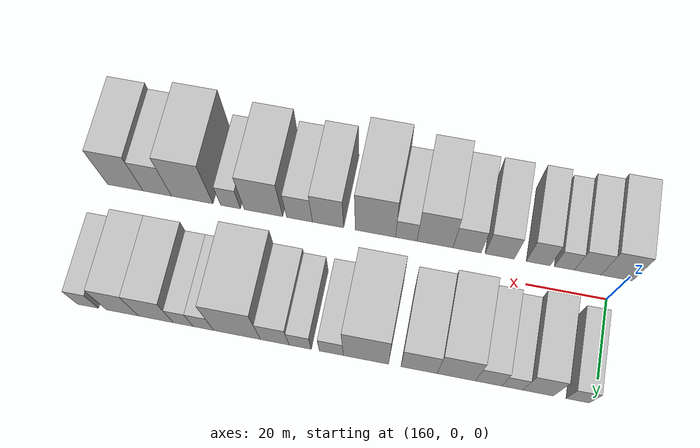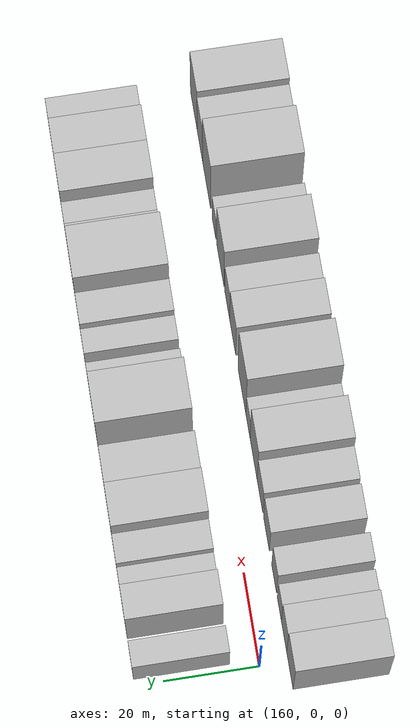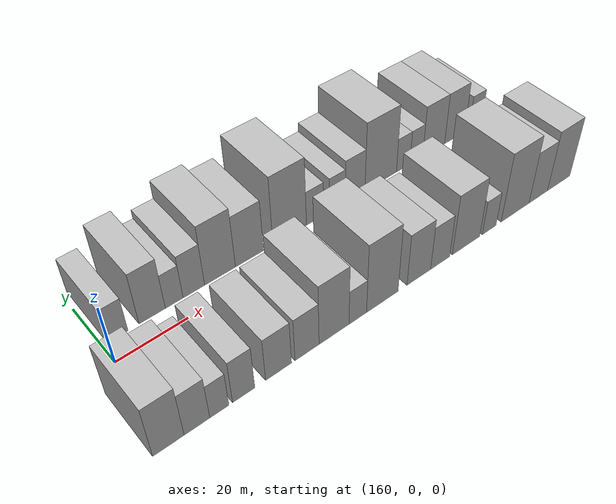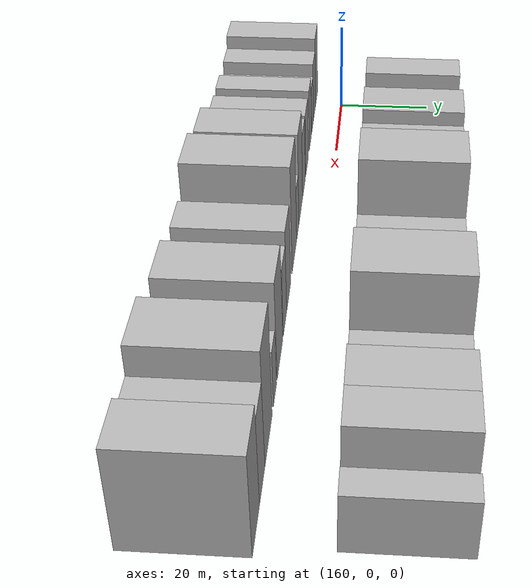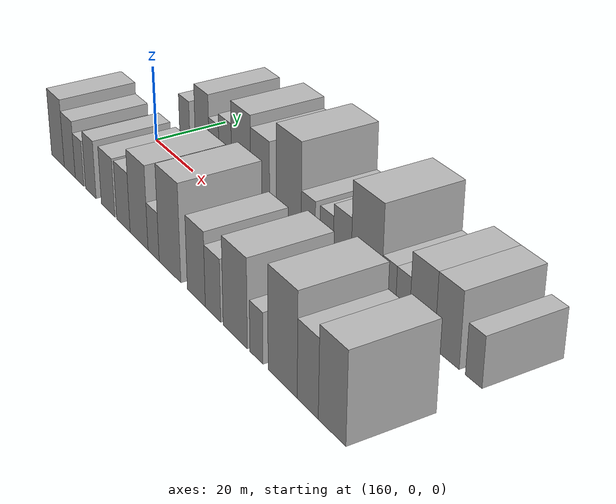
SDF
<sdf version="1.6">
 <world name="default">
  <model name="building_16">
   <static>1</static>
   <pose>164.2085 16.0000 0 0.000000 0.000000 1.570796</pose>
   <link name="link">
    <pose>0 0 6.00 0 0 0</pose>
    <collision name="collision"><geometry><box><size>20.0000 5.5949 12.0000</size></box></geometry></collision>
    <visual name="visual">
     <cast_shadows>0</cast_shadows>
     <geometry><box><size>20.0000 5.5949 12.0000</size></box></geometry>
     <material>
      <script>
       <uri>model://HANNAS_wall/materials/scripts</uri>
       <uri>model://HANNAS_wall/materials/textures</uri>
       <name>vrc/HANNAS_wall</name>
      </script>
     </material>
    </visual>
   </link>
  </model>
  <model name="building_17">
   <static>1</static>
   <pose>173.6710 16.0000 0 0.000000 0.000000 1.570796</pose>
   <link name="link">
    <pose>0 0 9.00 0 0 0</pose>
    <collision name="collision"><geometry><box><size>20.0000 7.3300 18.0000</size></box></geometry></collision>
    <visual name="visual">
     <cast_shadows>0</cast_shadows>
     <geometry><box><size>20.0000 7.3300 18.0000</size></box></geometry>
     <material>
      <script>
       <uri>model://HANNAS_wall/materials/scripts</uri>
       <uri>model://HANNAS_wall/materials/textures</uri>
       <name>vrc/HANNAS_wall</name>
      </script>
     </material>
    </visual>
   </link>
  </model>
  <model name="building_18">
   <static>1</static>
   <pose>179.8715 16.0000 0 0.000000 0.000000 1.570796</pose>
   <link name="link">
    <pose>0 0 6.00 0 0 0</pose>
    <collision name="collision"><geometry><box><size>20.0000 5.0711 12.0000</size></box></geometry></collision>
    <visual name="visual">
     <cast_shadows>0</cast_shadows>
     <geometry><box><size>20.0000 5.0711 12.0000</size></box></geometry>
     <material>
      <script>
       <uri>model://HANNAS_wall/materials/scripts</uri>
       <uri>model://HANNAS_wall/materials/textures</uri>
       <name>vrc/HANNAS_wall</name>
      </script>
     </material>
    </visual>
   </link>
  </model>
  <model name="building_19">
   <static>1</static>
   <pose>185.5619 16.0000 0 0.000000 0.000000 1.570796</pose>
   <link name="link">
    <pose>0 0 7.50 0 0 0</pose>
    <collision name="collision"><geometry><box><size>20.0000 6.3096 15.0000</size></box></geometry></collision>
    <visual name="visual">
     <cast_shadows>0</cast_shadows>
     <geometry><box><size>20.0000 6.3096 15.0000</size></box></geometry>
     <material>
      <script>
       <uri>model://HANNAS_wall/materials/scripts</uri>
       <uri>model://HANNAS_wall/materials/textures</uri>
       <name>vrc/HANNAS_wall</name>
      </script>
     </material>
    </visual>
   </link>
  </model>
  <model name="building_20">
   <static>1</static>
   <pose>193.3620 16.0000 0 0.000000 0.000000 1.570796</pose>
   <link name="link">
    <pose>0 0 10.50 0 0 0</pose>
    <collision name="collision"><geometry><box><size>20.0000 9.2907 21.0000</size></box></geometry></collision>
    <visual name="visual">
     <cast_shadows>0</cast_shadows>
     <geometry><box><size>20.0000 9.2907 21.0000</size></box></geometry>
     <material>
      <script>
       <uri>model://HANNAS_wall/materials/scripts</uri>
       <uri>model://HANNAS_wall/materials/textures</uri>
       <name>vrc/HANNAS_wall</name>
      </script>
     </material>
    </visual>
   </link>
  </model>
  <model name="building_21">
   <static>1</static>
   <pose>202.4040 16.0000 0 0.000000 0.000000 1.570796</pose>
   <link name="link">
    <pose>0 0 9.00 0 0 0</pose>
    <collision name="collision"><geometry><box><size>20.0000 8.7932 18.0000</size></box></geometry></collision>
    <visual name="visual">
     <cast_shadows>0</cast_shadows>
     <geometry><box><size>20.0000 8.7932 18.0000</size></box></geometry>
     <material>
      <script>
       <uri>model://HANNAS_wall/materials/scripts</uri>
       <uri>model://HANNAS_wall/materials/textures</uri>
       <name>vrc/HANNAS_wall</name>
      </script>
     </material>
    </visual>
   </link>
  </model>
  <model name="building_22">
   <static>1</static>
   <pose>215.3297 16.0000 0 0.000000 0.000000 1.570796</pose>
   <link name="link">
    <pose>0 0 12.00 0 0 0</pose>
    <collision name="collision"><geometry><box><size>20.0000 11.0581 24.0000</size></box></geometry></collision>
    <visual name="visual">
     <cast_shadows>0</cast_shadows>
     <geometry><box><size>20.0000 11.0581 24.0000</size></box></geometry>
     <material>
      <script>
       <uri>model://HANNAS_wall/materials/scripts</uri>
       <uri>model://HANNAS_wall/materials/textures</uri>
       <name>vrc/HANNAS_wall</name>
      </script>
     </material>
    </visual>
   </link>
  </model>
  <model name="building_23">
   <static>1</static>
   <pose>223.8093 16.0000 0 0.000000 0.000000 1.570796</pose>
   <link name="link">
    <pose>0 0 6.00 0 0 0</pose>
    <collision name="collision"><geometry><box><size>20.0000 5.9010 12.0000</size></box></geometry></collision>
    <visual name="visual">
     <cast_shadows>0</cast_shadows>
     <geometry><box><size>20.0000 5.9010 12.0000</size></box></geometry>
     <material>
      <script>
       <uri>model://HANNAS_wall/materials/scripts</uri>
       <uri>model://HANNAS_wall/materials/textures</uri>
       <name>vrc/HANNAS_wall</name>
      </script>
     </material>
    </visual>
   </link>
  </model>
  <model name="building_24">
   <static>1</static>
   <pose>231.5035 16.0000 0 0.000000 0.000000 1.570796</pose>
   <link name="link">
    <pose>0 0 6.00 0 0 0</pose>
    <collision name="collision"><geometry><box><size>20.0000 5.4875 12.0000</size></box></geometry></collision>
    <visual name="visual">
     <cast_shadows>0</cast_shadows>
     <geometry><box><size>20.0000 5.4875 12.0000</size></box></geometry>
     <material>
      <script>
       <uri>model://HANNAS_wall/materials/scripts</uri>
       <uri>model://HANNAS_wall/materials/textures</uri>
       <name>vrc/HANNAS_wall</name>
      </script>
     </material>
    </visual>
   </link>
  </model>
  <model name="building_25">
   <static>1</static>
   <pose>237.7894 16.0000 0 0.000000 0.000000 1.570796</pose>
   <link name="link">
    <pose>0 0 7.50 0 0 0</pose>
    <collision name="collision"><geometry><box><size>20.0000 7.0842 15.0000</size></box></geometry></collision>
    <visual name="visual">
     <cast_shadows>0</cast_shadows>
     <geometry><box><size>20.0000 7.0842 15.0000</size></box></geometry>
     <material>
      <script>
       <uri>model://HANNAS_wall/materials/scripts</uri>
       <uri>model://HANNAS_wall/materials/textures</uri>
       <name>vrc/HANNAS_wall</name>
      </script>
     </material>
    </visual>
   </link>
  </model>
  <model name="building_26">
   <static>1</static>
   <pose>247.1757 16.0000 0 0.000000 0.000000 1.570796</pose>
   <link name="link">
    <pose>0 0 12.00 0 0 0</pose>
    <collision name="collision"><geometry><box><size>20.0000 11.6884 24.0000</size></box></geometry></collision>
    <visual name="visual">
     <cast_shadows>0</cast_shadows>
     <geometry><box><size>20.0000 11.6884 24.0000</size></box></geometry>
     <material>
      <script>
       <uri>model://HANNAS_wall/materials/scripts</uri>
       <uri>model://HANNAS_wall/materials/textures</uri>
       <name>vrc/HANNAS_wall</name>
      </script>
     </material>
    </visual>
   </link>
  </model>
  <model name="building_27">
   <static>1</static>
   <pose>255.6017 16.0000 0 0.000000 0.000000 1.570796</pose>
   <link name="link">
    <pose>0 0 6.00 0 0 0</pose>
    <collision name="collision"><geometry><box><size>20.0000 5.1636 12.0000</size></box></geometry></collision>
    <visual name="visual">
     <cast_shadows>0</cast_shadows>
     <geometry><box><size>20.0000 5.1636 12.0000</size></box></geometry>
     <material>
      <script>
       <uri>model://HANNAS_wall/materials/scripts</uri>
       <uri>model://HANNAS_wall/materials/textures</uri>
       <name>vrc/HANNAS_wall</name>
      </script>
     </material>
    </visual>
   </link>
  </model>
  <model name="building_28">
   <static>1</static>
   <pose>260.6690 16.0000 0 0.000000 0.000000 1.570796</pose>
   <link name="link">
    <pose>0 0 6.00 0 0 0</pose>
    <collision name="collision"><geometry><box><size>20.0000 4.9711 12.0000</size></box></geometry></collision>
    <visual name="visual">
     <cast_shadows>0</cast_shadows>
     <geometry><box><size>20.0000 4.9711 12.0000</size></box></geometry>
     <material>
      <script>
       <uri>model://HANNAS_wall/materials/scripts</uri>
       <uri>model://HANNAS_wall/materials/textures</uri>
       <name>vrc/HANNAS_wall</name>
      </script>
     </material>
    </visual>
   </link>
  </model>
  <model name="building_29">
   <static>1</static>
   <pose>267.5593 16.0000 0 0.000000 0.000000 1.570796</pose>
   <link name="link">
    <pose>0 0 9.00 0 0 0</pose>
    <collision name="collision"><geometry><box><size>20.0000 8.8094 18.0000</size></box></geometry></collision>
    <visual name="visual">
     <cast_shadows>0</cast_shadows>
     <geometry><box><size>20.0000 8.8094 18.0000</size></box></geometry>
     <material>
      <script>
       <uri>model://HANNAS_wall/materials/scripts</uri>
       <uri>model://HANNAS_wall/materials/textures</uri>
       <name>vrc/HANNAS_wall</name>
      </script>
     </material>
    </visual>
   </link>
  </model>
  <model name="building_30">
   <static>1</static>
   <pose>276.0621 16.0000 0 0.000000 0.000000 1.570796</pose>
   <link name="link">
    <pose>0 0 9.00 0 0 0</pose>
    <collision name="collision"><geometry><box><size>20.0000 8.1962 18.0000</size></box></geometry></collision>
    <visual name="visual">
     <cast_shadows>0</cast_shadows>
     <geometry><box><size>20.0000 8.1962 18.0000</size></box></geometry>
     <material>
      <script>
       <uri>model://HANNAS_wall/materials/scripts</uri>
       <uri>model://HANNAS_wall/materials/textures</uri>
       <name>vrc/HANNAS_wall</name>
      </script>
     </material>
    </visual>
   </link>
  </model>
  <model name="building_31">
   <static>1</static>
   <pose>284.8099 16.0000 0 0.000000 0.000000 1.570796</pose>
   <link name="link">
    <pose>0 0 6.00 0 0 0</pose>
    <collision name="collision"><geometry><box><size>20.0000 5.2995 12.0000</size></box></geometry></collision>
    <visual name="visual">
     <cast_shadows>0</cast_shadows>
     <geometry><box><size>20.0000 5.2995 12.0000</size></box></geometry>
     <material>
      <script>
       <uri>model://HANNAS_wall/materials/scripts</uri>
       <uri>model://HANNAS_wall/materials/textures</uri>
       <name>vrc/HANNAS_wall</name>
      </script>
     </material>
    </visual>
   </link>
  </model>
  <model name="building_47">
   <static>1</static>
   <pose>158.1193 -16.0000 0 0.000000 0.000000 1.570796</pose>
   <link name="link">
    <pose>0 0 9.00 0 0 0</pose>
    <collision name="collision"><geometry><box><size>20.0000 7.8533 18.0000</size></box></geometry></collision>
    <visual name="visual">
     <cast_shadows>0</cast_shadows>
     <geometry><box><size>20.0000 7.8533 18.0000</size></box></geometry>
     <material>
      <script>
       <uri>model://HANNAS_wall/materials/scripts</uri>
       <uri>model://HANNAS_wall/materials/textures</uri>
       <name>vrc/HANNAS_wall</name>
      </script>
     </material>
    </visual>
   </link>
  </model>
  <model name="building_48">
   <static>1</static>
   <pose>165.3548 -16.0000 0 0.000000 0.000000 1.570796</pose>
   <link name="link">
    <pose>0 0 7.50 0 0 0</pose>
    <collision name="collision"><geometry><box><size>20.0000 6.6178 15.0000</size></box></geometry></collision>
    <visual name="visual">
     <cast_shadows>0</cast_shadows>
     <geometry><box><size>20.0000 6.6178 15.0000</size></box></geometry>
     <material>
      <script>
       <uri>model://HANNAS_wall/materials/scripts</uri>
       <uri>model://HANNAS_wall/materials/textures</uri>
       <name>vrc/HANNAS_wall</name>
      </script>
     </material>
    </visual>
   </link>
  </model>
  <model name="building_49">
   <static>1</static>
   <pose>171.1780 -16.0000 0 0.000000 0.000000 1.570796</pose>
   <link name="link">
    <pose>0 0 6.00 0 0 0</pose>
    <collision name="collision"><geometry><box><size>20.0000 5.0285 12.0000</size></box></geometry></collision>
    <visual name="visual">
     <cast_shadows>0</cast_shadows>
     <geometry><box><size>20.0000 5.0285 12.0000</size></box></geometry>
     <material>
      <script>
       <uri>model://HANNAS_wall/materials/scripts</uri>
       <uri>model://HANNAS_wall/materials/textures</uri>
       <name>vrc/HANNAS_wall</name>
      </script>
     </material>
    </visual>
   </link>
  </model>
  <model name="building_50">
   <static>1</static>
   <pose>177.7196 -16.0000 0 0.000000 0.000000 1.570796</pose>
   <link name="link">
    <pose>0 0 7.50 0 0 0</pose>
    <collision name="collision"><geometry><box><size>20.0000 6.0546 15.0000</size></box></geometry></collision>
    <visual name="visual">
     <cast_shadows>0</cast_shadows>
     <geometry><box><size>20.0000 6.0546 15.0000</size></box></geometry>
     <material>
      <script>
       <uri>model://HANNAS_wall/materials/scripts</uri>
       <uri>model://HANNAS_wall/materials/textures</uri>
       <name>vrc/HANNAS_wall</name>
      </script>
     </material>
    </visual>
   </link>
  </model>
  <model name="building_51">
   <static>1</static>
   <pose>187.4385 -16.0000 0 0.000000 0.000000 1.570796</pose>
   <link name="link">
    <pose>0 0 7.50 0 0 0</pose>
    <collision name="collision"><geometry><box><size>20.0000 7.3833 15.0000</size></box></geometry></collision>
    <visual name="visual">
     <cast_shadows>0</cast_shadows>
     <geometry><box><size>20.0000 7.3833 15.0000</size></box></geometry>
     <material>
      <script>
       <uri>model://HANNAS_wall/materials/scripts</uri>
       <uri>model://HANNAS_wall/materials/textures</uri>
       <name>vrc/HANNAS_wall</name>
      </script>
     </material>
    </visual>
   </link>
  </model>
  <model name="building_52">
   <static>1</static>
   <pose>195.6969 -16.0000 0 0.000000 0.000000 1.570796</pose>
   <link name="link">
    <pose>0 0 7.50 0 0 0</pose>
    <collision name="collision"><geometry><box><size>20.0000 7.1335 15.0000</size></box></geometry></collision>
    <visual name="visual">
     <cast_shadows>0</cast_shadows>
     <geometry><box><size>20.0000 7.1335 15.0000</size></box></geometry>
     <material>
      <script>
       <uri>model://HANNAS_wall/materials/scripts</uri>
       <uri>model://HANNAS_wall/materials/textures</uri>
       <name>vrc/HANNAS_wall</name>
      </script>
     </material>
    </visual>
   </link>
  </model>
  <model name="building_53">
   <static>1</static>
   <pose>203.8456 -16.0000 0 0.000000 0.000000 1.570796</pose>
   <link name="link">
    <pose>0 0 10.50 0 0 0</pose>
    <collision name="collision"><geometry><box><size>20.0000 9.1638 21.0000</size></box></geometry></collision>
    <visual name="visual">
     <cast_shadows>0</cast_shadows>
     <geometry><box><size>20.0000 9.1638 21.0000</size></box></geometry>
     <material>
      <script>
       <uri>model://HANNAS_wall/materials/scripts</uri>
       <uri>model://HANNAS_wall/materials/textures</uri>
       <name>vrc/HANNAS_wall</name>
      </script>
     </material>
    </visual>
   </link>
  </model>
  <model name="building_54">
   <static>1</static>
   <pose>211.1788 -16.0000 0 0.000000 0.000000 1.570796</pose>
   <link name="link">
    <pose>0 0 6.00 0 0 0</pose>
    <collision name="collision"><geometry><box><size>20.0000 5.5026 12.0000</size></box></geometry></collision>
    <visual name="visual">
     <cast_shadows>0</cast_shadows>
     <geometry><box><size>20.0000 5.5026 12.0000</size></box></geometry>
     <material>
      <script>
       <uri>model://HANNAS_wall/materials/scripts</uri>
       <uri>model://HANNAS_wall/materials/textures</uri>
       <name>vrc/HANNAS_wall</name>
      </script>
     </material>
    </visual>
   </link>
  </model>
  <model name="building_55">
   <static>1</static>
   <pose>219.0951 -16.0000 0 0.000000 0.000000 1.570796</pose>
   <link name="link">
    <pose>0 0 12.00 0 0 0</pose>
    <collision name="collision"><geometry><box><size>20.0000 10.3301 24.0000</size></box></geometry></collision>
    <visual name="visual">
     <cast_shadows>0</cast_shadows>
     <geometry><box><size>20.0000 10.3301 24.0000</size></box></geometry>
     <material>
      <script>
       <uri>model://HANNAS_wall/materials/scripts</uri>
       <uri>model://HANNAS_wall/materials/textures</uri>
       <name>vrc/HANNAS_wall</name>
      </script>
     </material>
    </visual>
   </link>
  </model>
  <model name="building_56">
   <static>1</static>
   <pose>231.3069 -16.0000 0 0.000000 0.000000 1.570796</pose>
   <link name="link">
    <pose>0 0 9.00 0 0 0</pose>
    <collision name="collision"><geometry><box><size>20.0000 8.0935 18.0000</size></box></geometry></collision>
    <visual name="visual">
     <cast_shadows>0</cast_shadows>
     <geometry><box><size>20.0000 8.0935 18.0000</size></box></geometry>
     <material>
      <script>
       <uri>model://HANNAS_wall/materials/scripts</uri>
       <uri>model://HANNAS_wall/materials/textures</uri>
       <name>vrc/HANNAS_wall</name>
      </script>
     </material>
    </visual>
   </link>
  </model>
  <model name="building_57">
   <static>1</static>
   <pose>238.7054 -16.0000 0 0.000000 0.000000 1.570796</pose>
   <link name="link">
    <pose>0 0 7.50 0 0 0</pose>
    <collision name="collision"><geometry><box><size>20.0000 6.7035 15.0000</size></box></geometry></collision>
    <visual name="visual">
     <cast_shadows>0</cast_shadows>
     <geometry><box><size>20.0000 6.7035 15.0000</size></box></geometry>
     <material>
      <script>
       <uri>model://HANNAS_wall/materials/scripts</uri>
       <uri>model://HANNAS_wall/materials/textures</uri>
       <name>vrc/HANNAS_wall</name>
      </script>
     </material>
    </visual>
   </link>
  </model>
  <model name="building_58">
   <static>1</static>
   <pose>248.0795 -16.0000 0 0.000000 0.000000 1.570796</pose>
   <link name="link">
    <pose>0 0 10.50 0 0 0</pose>
    <collision name="collision"><geometry><box><size>20.0000 10.0448 21.0000</size></box></geometry></collision>
    <visual name="visual">
     <cast_shadows>0</cast_shadows>
     <geometry><box><size>20.0000 10.0448 21.0000</size></box></geometry>
     <material>
      <script>
       <uri>model://HANNAS_wall/materials/scripts</uri>
       <uri>model://HANNAS_wall/materials/textures</uri>
       <name>vrc/HANNAS_wall</name>
      </script>
     </material>
    </visual>
   </link>
  </model>
  <model name="building_59">
   <static>1</static>
   <pose>256.7042 -16.0000 0 0.000000 0.000000 1.570796</pose>
   <link name="link">
    <pose>0 0 6.00 0 0 0</pose>
    <collision name="collision"><geometry><box><size>20.0000 5.2046 12.0000</size></box></geometry></collision>
    <visual name="visual">
     <cast_shadows>0</cast_shadows>
     <geometry><box><size>20.0000 5.2046 12.0000</size></box></geometry>
     <material>
      <script>
       <uri>model://HANNAS_wall/materials/scripts</uri>
       <uri>model://HANNAS_wall/materials/textures</uri>
       <name>vrc/HANNAS_wall</name>
      </script>
     </material>
    </visual>
   </link>
  </model>
  <model name="building_60">
   <static>1</static>
   <pose>266.7857 -16.0000 0 0.000000 0.000000 1.570796</pose>
   <link name="link">
    <pose>0 0 12.00 0 0 0</pose>
    <collision name="collision"><geometry><box><size>20.0000 10.9584 24.0000</size></box></geometry></collision>
    <visual name="visual">
     <cast_shadows>0</cast_shadows>
     <geometry><box><size>20.0000 10.9584 24.0000</size></box></geometry>
     <material>
      <script>
       <uri>model://HANNAS_wall/materials/scripts</uri>
       <uri>model://HANNAS_wall/materials/textures</uri>
       <name>vrc/HANNAS_wall</name>
      </script>
     </material>
    </visual>
   </link>
  </model>
  <model name="building_61">
   <static>1</static>
   <pose>276.0472 -16.0000 0 0.000000 0.000000 1.570796</pose>
   <link name="link">
    <pose>0 0 9.00 0 0 0</pose>
    <collision name="collision"><geometry><box><size>20.0000 7.5645 18.0000</size></box></geometry></collision>
    <visual name="visual">
     <cast_shadows>0</cast_shadows>
     <geometry><box><size>20.0000 7.5645 18.0000</size></box></geometry>
     <material>
      <script>
       <uri>model://HANNAS_wall/materials/scripts</uri>
       <uri>model://HANNAS_wall/materials/textures</uri>
       <name>vrc/HANNAS_wall</name>
      </script>
     </material>
    </visual>
   </link>
  </model>
  <model name="building_62">
   <static>1</static>
   <pose>284.5549 -16.0000 0 0.000000 0.000000 1.570796</pose>
   <link name="link">
    <pose>0 0 10.50 0 0 0</pose>
    <collision name="collision"><geometry><box><size>20.0000 9.4509 21.0000</size></box></geometry></collision>
    <visual name="visual">
     <cast_shadows>0</cast_shadows>
     <geometry><box><size>20.0000 9.4509 21.0000</size></box></geometry>
     <material>
      <script>
       <uri>model://HANNAS_wall/materials/scripts</uri>
       <uri>model://HANNAS_wall/materials/textures</uri>
       <name>vrc/HANNAS_wall</name>
      </script>
     </material>
    </visual>
   </link>
  </model>
 </world>
</sdf>
